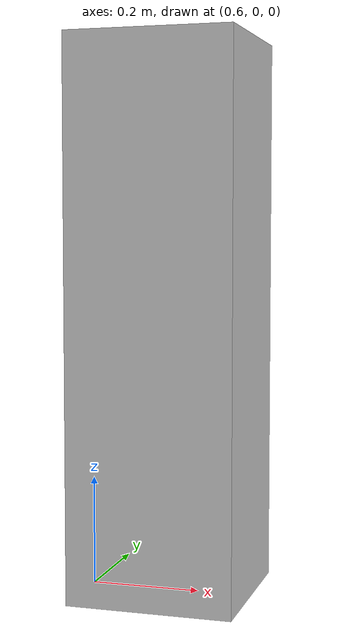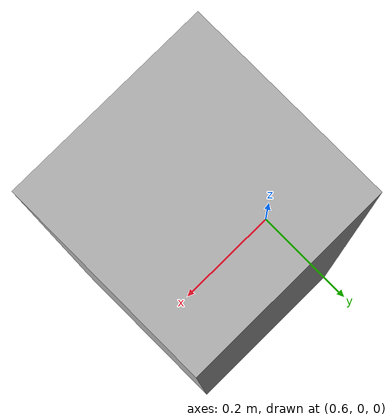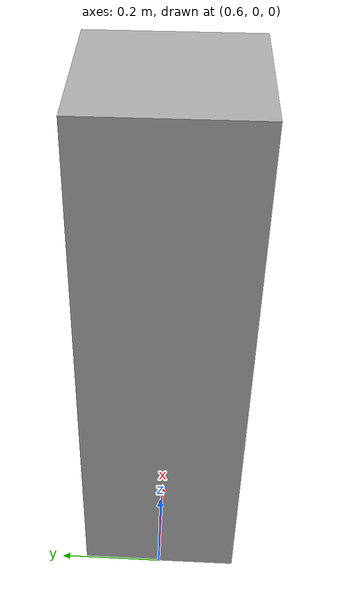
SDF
<sdf version='1.12'>
  <model name='square_0'>
    <plugin filename="gz-sim-touchplugin-system"            name="gz::sim::systems::TouchPlugin">        <target>turtlebot3_burger</target>        <namespace>obstacle</namespace>        <time>0.001</time>        <enabled>true</enabled>    </plugin>    <pose>0.75 0.0 0.5 0.0 0.0 0.0</pose>
    <link name='box_link'>
      <sensor name='sensor_contact' type='contact'>          <contact>              <collision>box_collision</collision>          </contact>      </sensor>      <inertial>
        <inertia>
          <ixx>10.9</ixx>
          <ixy>0</ixy>
          <ixz>0</ixz>
          <iyy>10.9</iyy>
          <iyz>0</iyz>
          <izz>1.7999999999999998</izz>
        </inertia>
        <mass>120</mass>
        <pose>0 0 0 0 0 0</pose>
      </inertial>
      <collision name='box_collision'>
        <geometry>
          <box>
            <size>0.3 0.3 1.0</size>
          </box>
        </geometry>
        <surface>
          <friction>
            <ode/>
          </friction>
          <bounce/>
          <contact/>
        </surface>
      </collision>
      <visual name='box_visual'>
        <geometry>
          <box>
            <size>0.3 0.3 1.0</size>
          </box>
        </geometry>
        <material>
          <ambient>0.300000012 0.300000012 0.300000012 1</ambient>
          <diffuse>0.699999988 0.699999988 0.699999988 1</diffuse>
          <specular>1 1 1 1</specular>
        </material>
      </visual>
      <pose>0 0 0 0 0 0</pose>
      <enable_wind>false</enable_wind>
    </link>
    <static>false</static>
    <self_collide>false</self_collide>
  </model>
</sdf>
